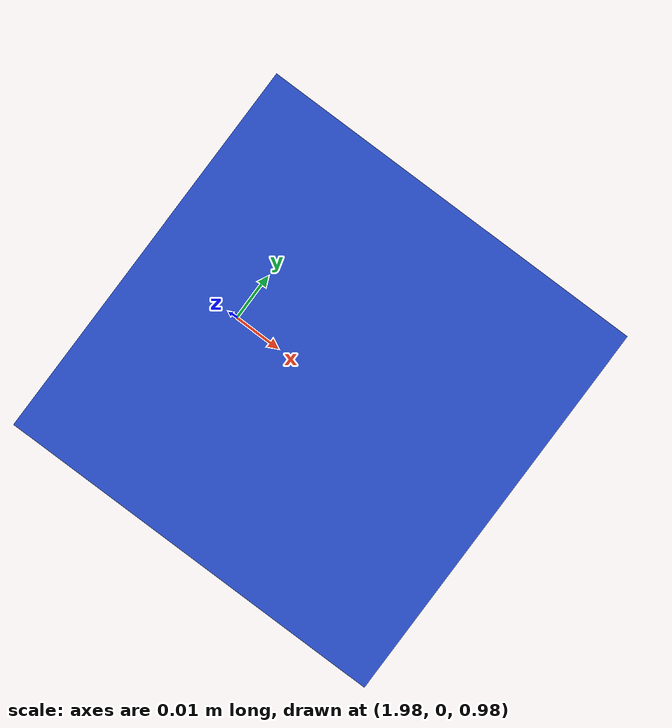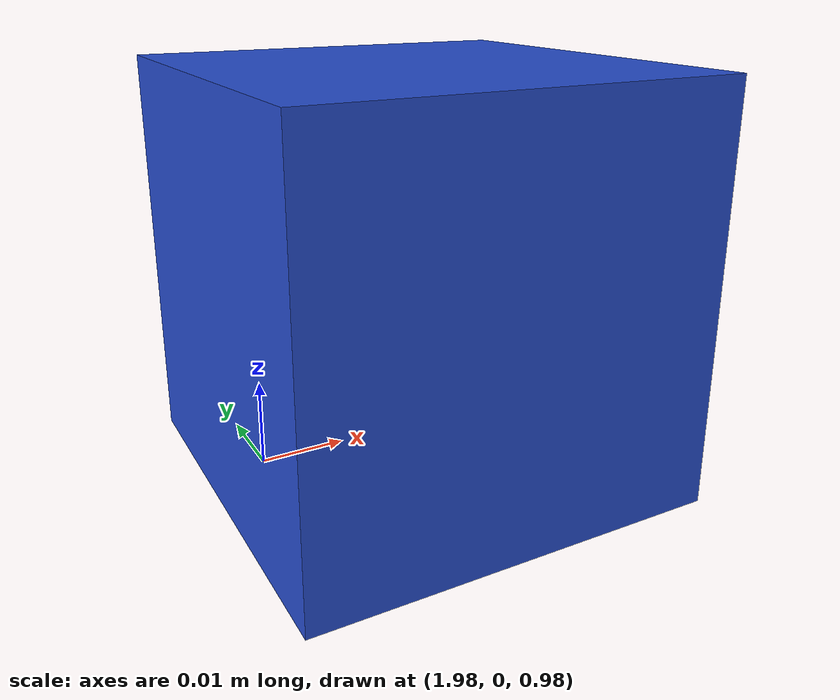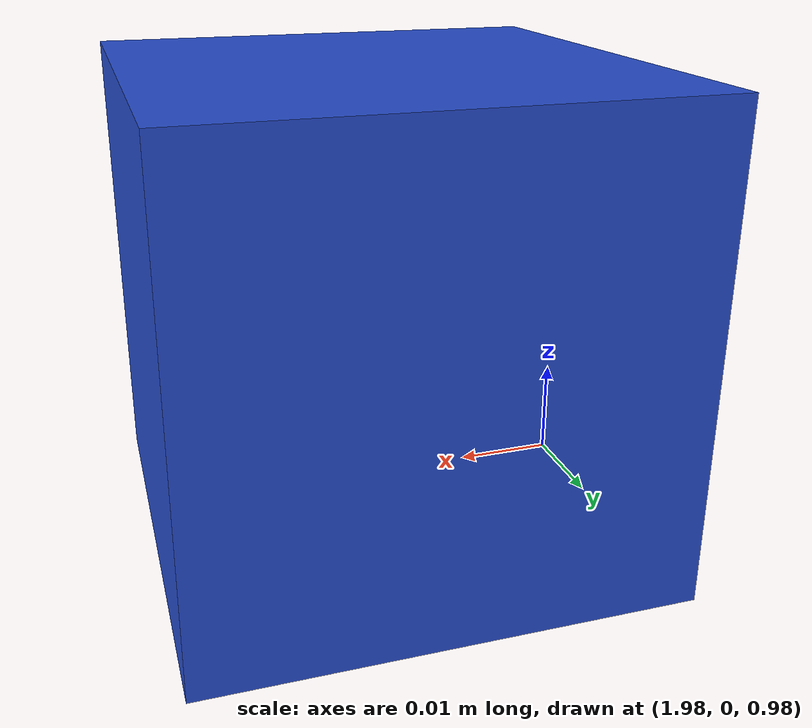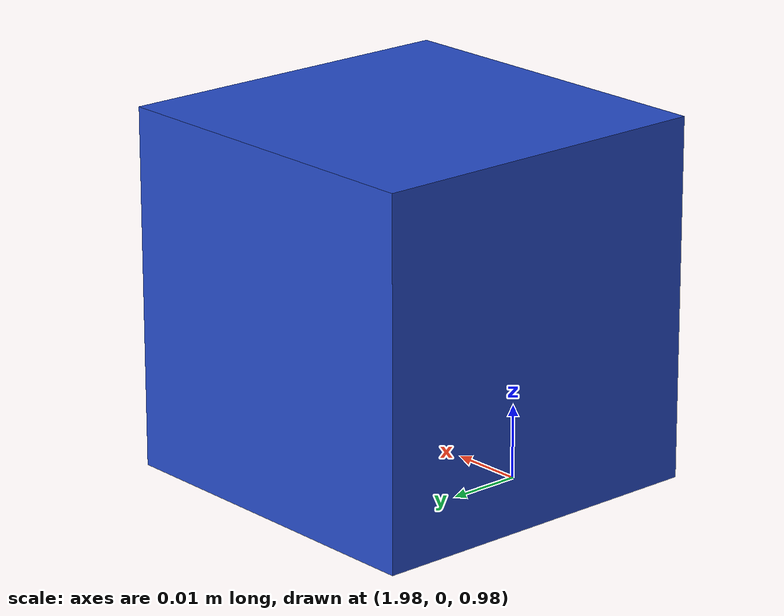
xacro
<?xml version="1.0"?>
<robot xmlns:xacro="http://www.ros.org/wiki/xacro" name="mybox" >
    <link name="mybox">
        <inertial>
            <origin xyz="2 0 0" />
            <mass value="0.2" />
            <inertia  ixx="1.0" ixy="0.0"  ixz="0.0"  iyy="100.0"  iyz="0.0"  izz="1.0" />
        </inertial>
        <visual>
            <origin xyz="2 0 1"/>
            <geometry>
                <box size="0.05 0.05 0.05" />
            </geometry>
        </visual>
        <collision>
            <origin xyz="2 0 1"/>
            <geometry>
                <box size="0.05 0.05 0.05" />
            </geometry>
        </collision>
    </link>
    <gazebo reference="mybox">
        <material>Gazebo/Blue</material>
    </gazebo>
</robot>
